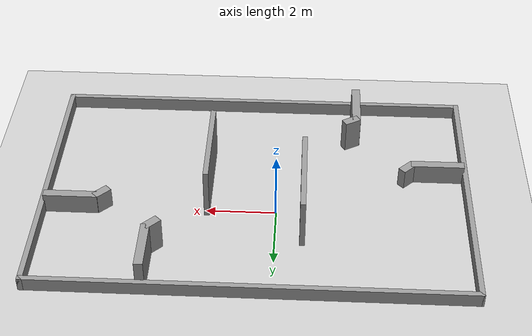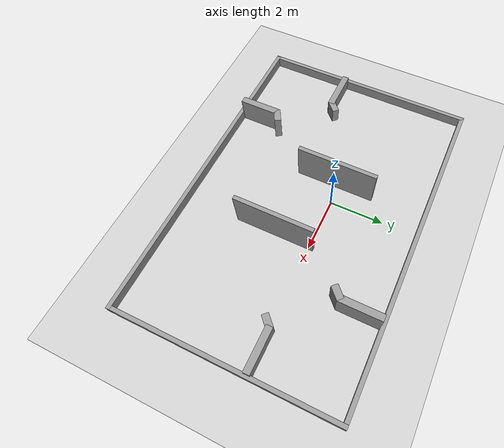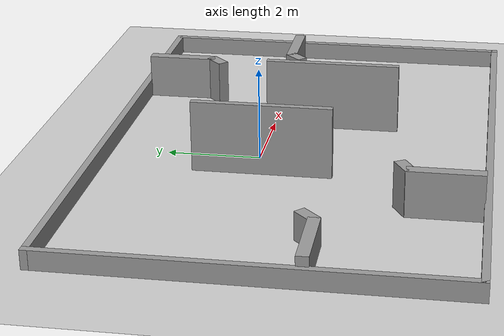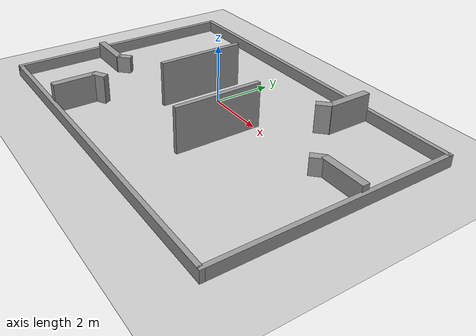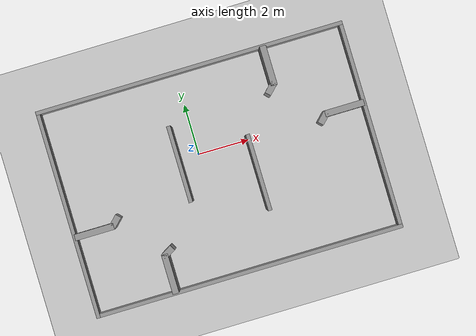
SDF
<sdf version="1.7">
 <world name="default">
  <light name="sun" type="directional">
   <pose>0 0 10 0 -0 0</pose>
   <diffuse>0.8 0.8 0.8 1</diffuse>
   <specular>0.2 0.2 0.2 1</specular>
   <attenuation>
    <range>1000</range>
    <constant>0.9</constant>
    <linear>0.01</linear>
    <quadratic>0.001</quadratic>
   </attenuation>
   <direction>-0.5 0.1 -0.9</direction>
   <spot><inner_angle>0</inner_angle><outer_angle>0</outer_angle><falloff>0</falloff></spot>
  </light>
  <model name="ground_plane">
   <static>1</static>
   <link name="link">
    <collision name="collision">
     <geometry><plane><normal>0 0 1</normal><size>100 100</size></plane></geometry>
     <surface>
      <contact><collide_bitmask>65535</collide_bitmask></contact>
      <friction><ode><mu>100</mu><mu2>50</mu2></ode></friction>
     </surface>
    </collision>
    <visual name="visual">
     <cast_shadows>0</cast_shadows>
     <geometry><plane><normal>0 0 1</normal><size>100 100</size></plane></geometry>
     <material>
      <script><uri>file://media/materials/scripts/gazebo.material</uri><name>Gazebo/Grey</name></script>
     </material>
    </visual>
   </link>
  </model>
  <gravity>0 0 -9.8</gravity>
  <magnetic_field>6e-06 2.3e-05 -4.2e-05</magnetic_field>
  <atmosphere type="adiabatic"/>
  <physics type="ode">
   <max_step_size>0.001</max_step_size>
   <real_time_factor>1</real_time_factor>
   <real_time_update_rate>1000</real_time_update_rate>
  </physics>
  <scene><ambient>0.4 0.4 0.4 1</ambient><background>0.7 0.7 0.7 1</background><shadows>1</shadows></scene>
  <audio><device>default</device></audio>
  <spherical_coordinates>
   <surface_model>EARTH_WGS84</surface_model>
   <latitude_deg>0</latitude_deg>
   <longitude_deg>0</longitude_deg>
   <elevation>0</elevation>
   <heading_deg>0</heading_deg>
  </spherical_coordinates>
  <model name="robomasters_3v3">
   <pose>0.58598 -0.303628 0 0 -0 0</pose>
   <link name="Wall_0">
    <collision name="Wall_0_Collision">
     <geometry><box><size>12.3 0.15 0.4</size></box></geometry>
     <pose>0 0 0.2 0 -0 0</pose>
    </collision>
    <visual name="Wall_0_Visual">
     <pose>0 0 0.2 0 -0 0</pose>
     <geometry><box><size>12.3 0.15 0.4</size></box></geometry>
     <material>
      <script><uri>file://media/materials/scripts/gazebo.material</uri><name>Gazebo/Grey</name></script>
      <ambient>1 1 1 1</ambient>
     </material>
     <meta><layer>0</layer></meta>
    </visual>
    <pose>0 3.5925 0 0 -0 0</pose>
   </link>
   <link name="Wall_10">
    <collision name="Wall_10_Collision">
     <geometry><box><size>1.55 0.25 0.978</size></box></geometry>
     <pose>0 0 0.489 0 -0 0</pose>
    </collision>
    <visual name="Wall_10_Visual">
     <pose>0 0 0.489 0 -0 0</pose>
     <geometry><box><size>1.55 0.25 0.978</size></box></geometry>
     <material>
      <script><uri>file://media/materials/scripts/gazebo.material</uri><name>Gazebo/Grey</name></script>
      <ambient>1 1 1 1</ambient>
     </material>
     <meta><layer>0</layer></meta>
    </visual>
    <pose>-2.90078 -3.72728 0 0 -0 1.5708</pose>
   </link>
   <link name="Wall_2">
    <collision name="Wall_2_Collision">
     <geometry><box><size>8.3 0.15 0.4</size></box></geometry>
     <pose>0 0 0.2 0 -0 0</pose>
    </collision>
    <visual name="Wall_2_Visual">
     <pose>0 0 0.2 0 -0 0</pose>
     <geometry><box><size>8.3 0.15 0.4</size></box></geometry>
     <material>
      <script><uri>file://media/materials/scripts/gazebo.material</uri><name>Gazebo/Grey</name></script>
      <ambient>1 1 1 1</ambient>
     </material>
     <meta><layer>0</layer></meta>
    </visual>
    <pose>-6.075 -0.4825 0 0 -0 -1.5708</pose>
   </link>
   <link name="Wall_23">
    <collision name="Wall_23_Collision">
     <geometry><box><size>1.55 0.25 0.6</size></box></geometry>
     <pose>0 0 0.3 0 -0 0</pose>
    </collision>
    <visual name="Wall_23_Visual">
     <pose>0 0 0.3 0 -0 0</pose>
     <geometry><box><size>1.55 0.25 0.6</size></box></geometry>
     <material>
      <script><uri>file://media/materials/scripts/gazebo.material</uri><name>Gazebo/Grey</name></script>
      <ambient>1 1 1 1</ambient>
     </material>
     <meta><layer>0</layer></meta>
    </visual>
    <pose>-5.259 -1.4025 0 0 -0 0</pose>
   </link>
   <link name="Wall_25">
    <collision name="Wall_25_Collision">
     <geometry><box><size>0.5 0.25 0.6</size></box></geometry>
     <pose>0 0 0.3 0 -0 0</pose>
    </collision>
    <visual name="Wall_25_Visual">
     <pose>0 0 0.3 0 -0 0</pose>
     <geometry><box><size>0.5 0.25 0.6</size></box></geometry>
     <material>
      <script><uri>file://media/materials/scripts/gazebo.material</uri><name>Gazebo/Grey</name></script>
      <ambient>1 1 1 1</ambient>
     </material>
     <meta><layer>0</layer></meta>
    </visual>
    <pose>-4.378 -1.2505 0 0 -0 0.779749</pose>
   </link>
   <link name="Wall_27">
    <collision name="Wall_27_Collision">
     <geometry><box><size>0.5 0.25 0.978</size></box></geometry>
     <pose>0 0 0.489 0 -0 0</pose>
    </collision>
    <visual name="Wall_27_Visual">
     <pose>0 0 0.489 0 -0 0</pose>
     <geometry><box><size>0.5 0.25 0.978</size></box></geometry>
     <material>
      <script><uri>file://media/materials/scripts/gazebo.material</uri><name>Gazebo/Grey</name></script>
      <ambient>1 1 1 1</ambient>
     </material>
     <meta><layer>0</layer></meta>
    </visual>
    <pose>-2.74276 -2.92698 0 0 -0 0.523754</pose>
   </link>
   <link name="Wall_33">
    <collision name="Wall_33_Collision">
     <geometry><box><size>1.55 0.25 0.978</size></box></geometry>
     <pose>0 0 0.489 0 -0 0</pose>
    </collision>
    <visual name="Wall_33_Visual">
     <pose>0 0 0.489 0 -0 0</pose>
     <geometry><box><size>1.55 0.25 0.978</size></box></geometry>
     <material>
      <script><uri>file://media/materials/scripts/gazebo.material</uri><name>Gazebo/Grey</name></script>
      <ambient>1 1 1 1</ambient>
     </material>
     <meta><layer>0</layer></meta>
    </visual>
    <pose>2.899 2.7545 0 0 -0 -1.5708</pose>
   </link>
   <link name="Wall_35">
    <collision name="Wall_35_Collision">
     <geometry><box><size>1.55 0.25 0.6</size></box></geometry>
     <pose>0 0 0.3 0 -0 0</pose>
    </collision>
    <visual name="Wall_35_Visual">
     <pose>0 0 0.3 0 -0 0</pose>
     <geometry><box><size>1.55 0.25 0.6</size></box></geometry>
     <material>
      <script><uri>file://media/materials/scripts/gazebo.material</uri><name>Gazebo/Grey</name></script>
      <ambient>1 1 1 1</ambient>
     </material>
     <meta><layer>0</layer></meta>
    </visual>
    <pose>5.262 0.4035 0 0 -0 3.14159</pose>
   </link>
   <link name="Wall_37">
    <collision name="Wall_37_Collision">
     <geometry><box><size>0.5 0.25 0.978</size></box></geometry>
     <pose>0 0 0.489 0 -0 0</pose>
    </collision>
    <visual name="Wall_37_Visual">
     <pose>0 0 0.489 0 -0 0</pose>
     <geometry><box><size>0.5 0.25 0.978</size></box></geometry>
     <material>
      <script><uri>file://media/materials/scripts/gazebo.material</uri><name>Gazebo/Grey</name></script>
      <ambient>1 1 1 1</ambient>
     </material>
     <meta><layer>0</layer></meta>
    </visual>
    <pose>2.75311 1.90161 0 0 -0 -2.35619</pose>
   </link>
   <link name="Wall_39">
    <collision name="Wall_39_Collision">
     <geometry><box><size>0.5 0.25 0.6</size></box></geometry>
     <pose>0 0 0.3 0 -0 0</pose>
    </collision>
    <visual name="Wall_39_Visual">
     <pose>0 0 0.3 0 -0 0</pose>
     <geometry><box><size>0.5 0.25 0.6</size></box></geometry>
     <material>
      <script><uri>file://media/materials/scripts/gazebo.material</uri><name>Gazebo/Grey</name></script>
      <ambient>1 1 1 1</ambient>
     </material>
     <meta><layer>0</layer></meta>
    </visual>
    <pose>4.3915 0.269 0 0 -0 -2.35619</pose>
   </link>
   <link name="Wall_4">
    <collision name="Wall_4_Collision">
     <geometry><box><size>12.3 0.15 0.4</size></box></geometry>
     <pose>0 0 0.2 0 -0 0</pose>
    </collision>
    <visual name="Wall_4_Visual">
     <pose>0 0 0.2 0 -0 0</pose>
     <geometry><box><size>12.3 0.15 0.4</size></box></geometry>
     <material>
      <script><uri>file://media/materials/scripts/gazebo.material</uri><name>Gazebo/Grey</name></script>
      <ambient>1 1 1 1</ambient>
     </material>
     <meta><layer>0</layer></meta>
    </visual>
    <pose>0 -4.5575 0 0 -0 0</pose>
   </link>
   <link name="Wall_53">
    <collision name="Wall_53_Collision">
     <geometry><box><size>2.95 0.15 1.529</size></box></geometry>
     <pose>0 0 0.7645 0 -0 0</pose>
    </collision>
    <visual name="Wall_53_Visual">
     <pose>0 0 0.7645 0 -0 0</pose>
     <geometry><box><size>2.95 0.15 1.529</size></box></geometry>
     <material>
      <script><uri>file://media/materials/scripts/gazebo.material</uri><name>Gazebo/Grey</name></script>
      <ambient>1 1 1 1</ambient>
     </material>
     <meta><layer>0</layer></meta>
    </visual>
    <pose>1.38 -0.9985 0 0 -0 -1.5708</pose>
   </link>
   <link name="Wall_59">
    <collision name="Wall_59_Collision">
     <geometry><box><size>2.95 0.15 1.529</size></box></geometry>
     <pose>0 0 0.7645 0 -0 0</pose>
    </collision>
    <visual name="Wall_59_Visual">
     <pose>0 0 0.7645 0 -0 0</pose>
     <geometry><box><size>2.95 0.15 1.529</size></box></geometry>
     <material>
      <script><uri>file://media/materials/scripts/gazebo.material</uri><name>Gazebo/Grey</name></script>
      <ambient>1 1 1 1</ambient>
     </material>
     <meta><layer>0</layer></meta>
    </visual>
    <pose>-1.354 0.1285 0 0 -0 -1.5708</pose>
   </link>
   <link name="Wall_6">
    <collision name="Wall_6_Collision">
     <geometry><box><size>8.3 0.15 0.4</size></box></geometry>
     <pose>0 0 0.2 0 -0 0</pose>
    </collision>
    <visual name="Wall_6_Visual">
     <pose>0 0 0.2 0 -0 0</pose>
     <geometry><box><size>8.3 0.15 0.4</size></box></geometry>
     <material>
      <script><uri>file://media/materials/scripts/gazebo.material</uri><name>Gazebo/Grey</name></script>
      <ambient>1 1 1 1</ambient>
     </material>
     <meta><layer>0</layer></meta>
    </visual>
    <pose>6.075 -0.4825 0 0 -0 -1.5708</pose>
   </link>
   <static>1</static>
  </model>
 </world>
</sdf>
